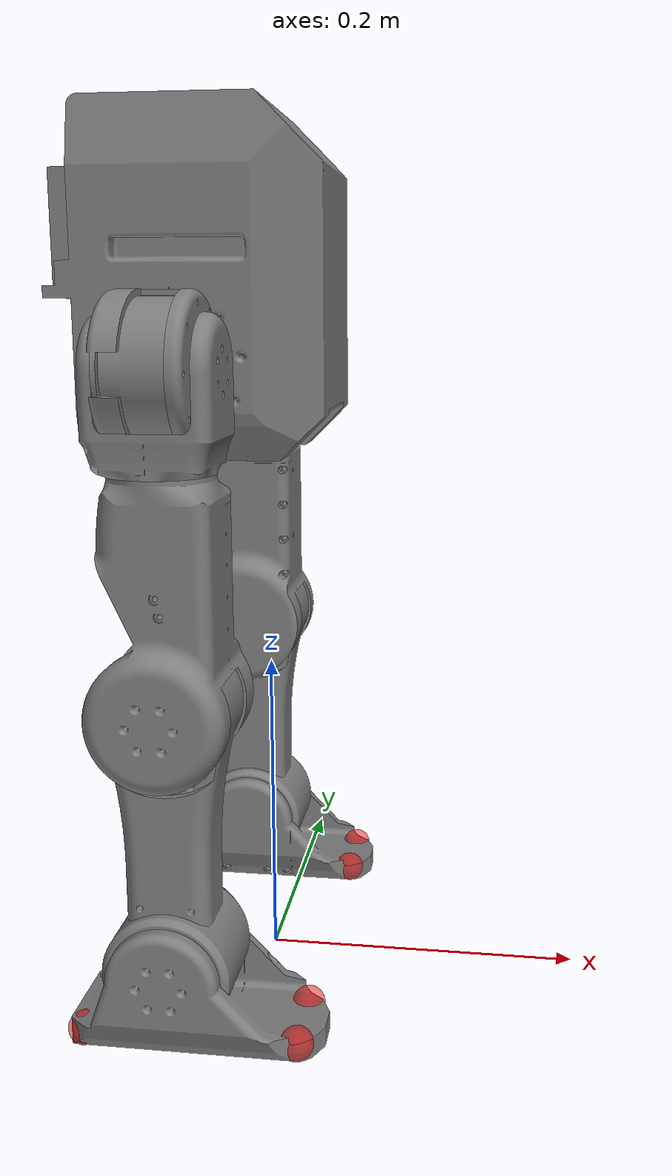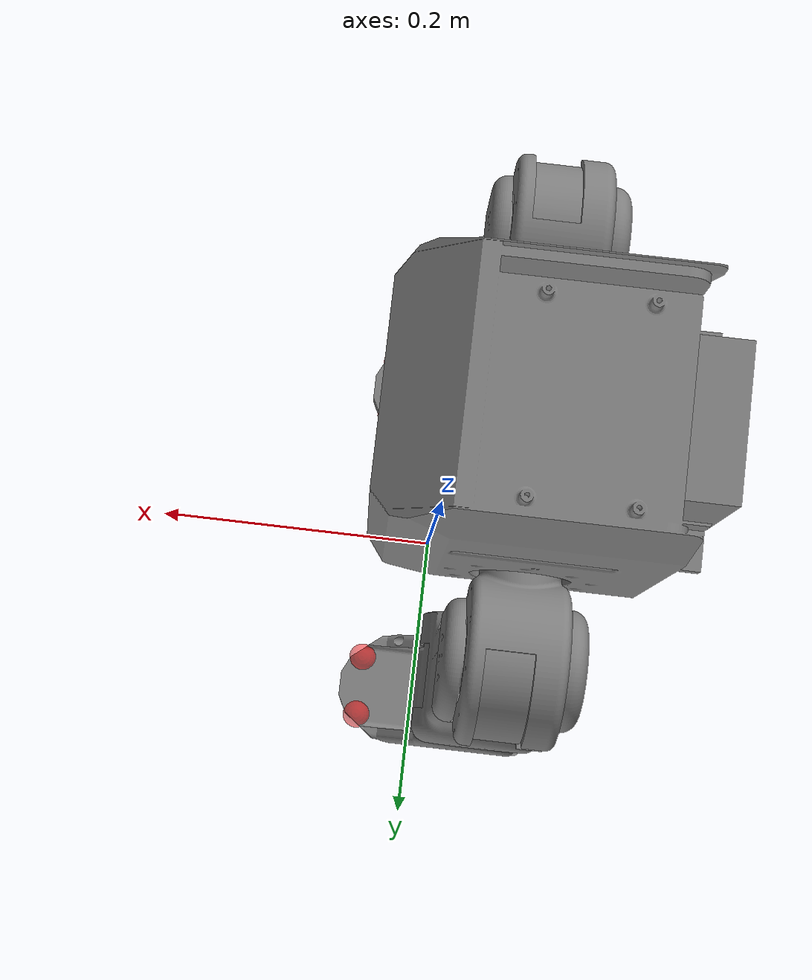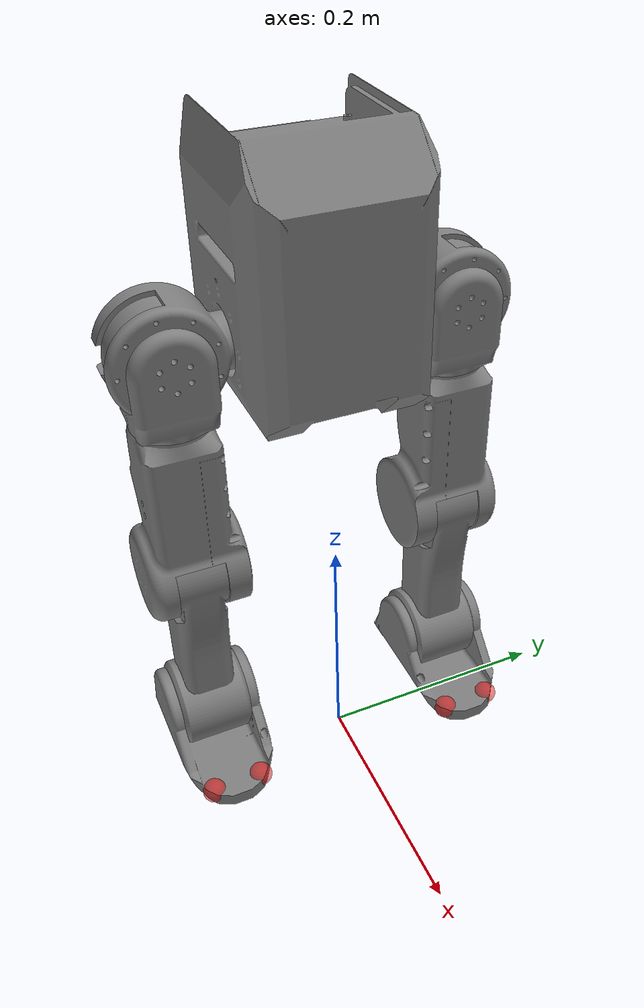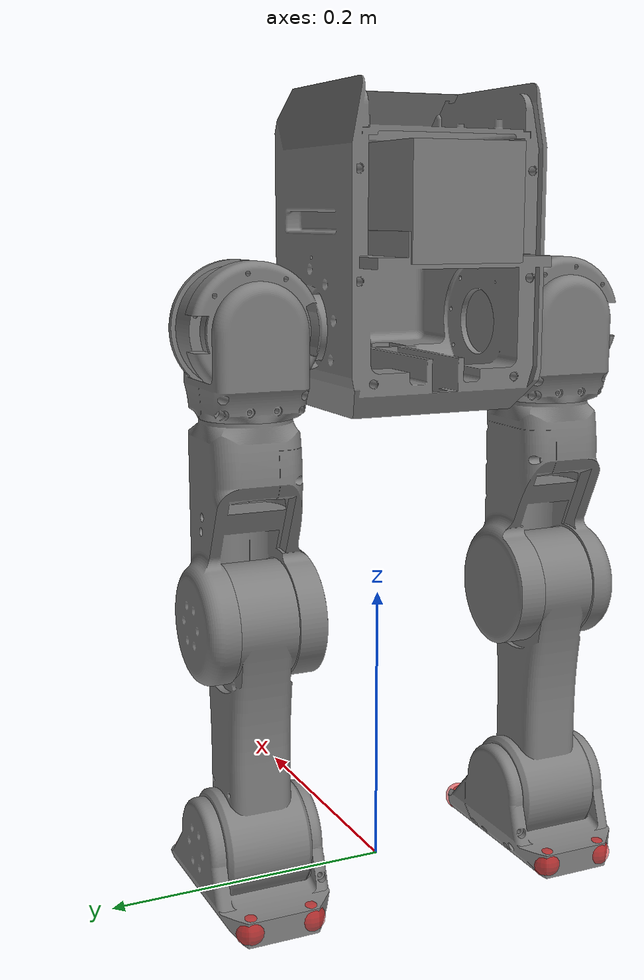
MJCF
<mujoco model="minibot">
  <compiler angle='radian' eulerseq="XYZ" meshdir="../meshes/"
    autolimits="true" />
  <option timestep="0.001"/>
  <visual>
    <global azimuth="150" elevation="-20" />
    <headlight ambient="0.3 0.3 0.3" diffuse="0.6 0.6 0.6" specular="0 0 0" />
    <scale forcewidth="0.03" contactwidth="0.01" contactheight="0.02" com="1" framelength="0.6"
      framewidth="0.05" />
    <rgba haze="0.15 0.25 0.35 1" com="0.502 1 0 0.5" contactpoint="1 1 0.6 0.4"
      contactforce="0.98 0.4 0.4 1" />
  </visual>
  <default>
    <geom contype = "0" conaffinity = "0" solref = "0.005 1" condim = "3" friction = "1 1" />
    <equality solref = "0.005 1" />
    <default class = "zhiyuan">
    </default>
    <default class = "collision">
        <geom contype = "1" group = "3" type = "capsule" />
        <default class = "collision-left">
            <geom contype = "2" conaffinity = "4" />
        </default>
        <default class = "collision-right">
            <geom contype = "4" conaffinity = "2" />
        </default>
    </default>
  </default>
  <asset>
    <mesh name="base_link" content_type="model/stl" file="base_link.stl" scale="0.001 0.001 0.001"/>
    <mesh name="battery_1" content_type="model/stl" file="battery_1.stl" scale="0.001 0.001 0.001"/>
    <mesh name="RS02_3_1" content_type="model/stl" file="RS02_3_1.stl" scale="0.001 0.001 0.001"/>
    <mesh name="RS02_4_1" content_type="model/stl" file="RS02_4_1.stl" scale="0.001 0.001 0.001"/>
    <mesh name="left_hip_pitch_link_1" content_type="model/stl" file="left_hip_pitch_link_1.stl" scale="0.001 0.001 0.001"/>
    <mesh name="right_hip_pitch_link_1" content_type="model/stl" file="right_hip_pitch_link_1.stl" scale="0.001 0.001 0.001"/>
    <mesh name="left_hip_roll_link_1" content_type="model/stl" file="left_hip_roll_link_1.stl" scale="0.001 0.001 0.001"/>
    <mesh name="right_hip_roll_link_1" content_type="model/stl" file="right_hip_roll_link_1.stl" scale="0.001 0.001 0.001"/>
    <mesh name="left_hip_yaw_link_1" content_type="model/stl" file="left_hip_yaw_link_1.stl" scale="0.001 0.001 0.001"/>
    <mesh name="right_hip_yaw_link_1" content_type="model/stl" file="right_hip_yaw_link_1.stl" scale="0.001 0.001 0.001"/>
    <mesh name="left_knee_link_1" content_type="model/stl" file="left_knee_link_1.stl" scale="0.001 0.001 0.001"/>
    <mesh name="right_knee_link_1" content_type="model/stl" file="right_knee_link_1.stl" scale="0.001 0.001 0.001"/>
    <mesh name="left_ankle_pitch_link_1" content_type="model/stl" file="left_ankle_pitch_link_1.stl" scale="0.001 0.001 0.001"/>
    <mesh name="right_ankle_pitch_link_1" content_type="model/stl" file="right_ankle_pitch_link_1.stl" scale="0.001 0.001 0.001"/>
  </asset>

  <worldbody>
    <body name="base_link" pos="0 0 0.37">
      <freejoint name="floating_base"/>
      <inertial pos="-0.0227544 -9.02508e-06 0.0497123" quat="0.999979 0 0.00646884 0" mass="1.28589" diaginertia="0.00753138 0.006963 0.00528962"/>
      <geom type="mesh" contype="0" conaffinity="0" group="1" density="0" mesh="base_link"/>
      <geom type="mesh" mesh="base_link" class="collision"/>
      <body name="imu_link">
        <inertial pos="0 0 0" mass="0.0001" diaginertia="0 0 0"/>
      </body>
      <site name = "imu" size = "0.001" pos = "0 0 0" />
      <body name="battery_1" pos="-0.005466 0 0.06425">
        <inertial pos="-0.0570557 2.04763e-05 0.0368659" quat="0 0.690964 0 0.722889" mass="0.679747" diaginertia="0.00111204 0.001082 0.000601961"/>
        <geom pos="0.005466 0 -0.06425" quat="1 0 0 0" type="mesh" contype="0" conaffinity="0" group="1" density="0" mesh="battery_1"/>
      </body>
      <body name="RS02_1_1" pos="-0.0371 0.0554 0.0225">
        <inertial pos="0.000686404 -0.0190126 -0.00110839" quat="0.707388 -0.0729626 -0.0791499 0.69858" mass="0.383794" diaginertia="0.000355021 0.000265643 0.000251335"/>
      </body>
      <body name="RS02_2_1" pos="-0.0371 -0.0554 0.0225">
        <inertial pos="0.000686404 0.0190126 0.00110839" quat="0.69858 0.0791499 0.0729626 0.707388" mass="0.383794" diaginertia="0.000355021 0.000265643 0.000251335"/>
      </body>
      <body name="left_hip_pitch_link" pos="-0.0371 0.059 0.0225">
        <inertial pos="-0.00417062 0.0422641 -3.15653e-05" quat="0.705568 0.705568 0.0466288 0.0466288" mass="0.0943321" diaginertia="0.000121664 9.8e-05 8.33362e-05"/>
        <joint name="left_hip_pitch_joint" pos="0 0 0" axis="0 -1 0" damping='0.01' armature="0.01" range="-2.61 3.14" actuatorfrcrange="-17 17"/>
        <geom pos="0.0371 -0.059 -0.0225" quat="1 0 0 0" type="mesh" contype="0" conaffinity="0" group="1" density="0" mesh="left_hip_pitch_link_1"/>
        <geom pos="0.0371 -0.059 -0.0225" quat="1 0 0 0" type="mesh" mesh="left_hip_pitch_link_1" rgba="0 0 0 1"/>
        <body name="RS02_4_1" pos="0.02 0.0525 0">
          <inertial pos="-0.0190126 0.000686403 0.00110839" quat="0.994169 -0.10756 0.00437509 0.00622816" mass="0.383794" diaginertia="0.000355021 0.000265643 0.000251335"/>
          <geom pos="0.0171 -0.1115 -0.0225" type="mesh" contype="0" conaffinity="0" group="1" density="0" mesh="RS02_4_1"/>
        </body>
        <body name="left_hip_roll_link" pos="0.025 0.0525 0">
          <inertial pos="-0.0209284 -4.58136e-05 -0.0295141" quat="0.65488 0.266705 0.266705 0.65488" mass="0.214014" diaginertia="0.000269 0.000220506 0.000178494"/>
          <joint name="left_hip_roll_joint" pos="0 0 0" axis="1 0 0" damping='0.01' armature="0.01" range="-0.3 3.1" actuatorfrcrange="-17 17"/>
          <geom pos="0.0121 -0.1115 -0.0225" quat="1 0 0 0" type="mesh" contype="0" conaffinity="0" group="1" density="0" mesh="left_hip_roll_link_1"/>
          <geom pos="0.0121 -0.1115 -0.0225" quat="1 0 0 0" type="mesh" mesh="left_hip_roll_link_1" rgba="0 0 0 1"/>
          <body name="left_hip_yaw_link" pos="-0.02415 0 -0.055">
            <inertial pos="0.00453541 -0.00012515 -0.0827174" quat="0.999918 -0.00395755 0.012187 0.000547296" mass="0.234011" diaginertia="0.000718268 0.000645024 0.000266708"/>
            <joint name="left_hip_yaw_joint" pos="0 0 0" axis="0 0 -1" damping='0.01' armature="0.01" range="-3 3" actuatorfrcrange="-6 6"/>
            <geom pos="0.03625 -0.1115 0.0325" type="mesh" contype="0" conaffinity="0" group="1" density="0" mesh="left_hip_yaw_link_1"/>
            <geom pos="0.03625 -0.1115 0.0325" type="mesh" mesh="left_hip_yaw_link_1"/>
            <body name="RS05_1_1" pos="0 0 -0.015">
              <inertial pos="-0.000131581 4.9559e-05 -0.0188055" mass="0.222271" diaginertia="8.8e-05 8.8e-05 7.5e-05"/>
            </body>
            <body name="left_knee_link" pos="0 0.0267 -0.133">
              <inertial pos="1.57859e-06 -0.0275984 -0.0746707" quat="0.707107 0 0 0.707107" mass="0.248334" diaginertia="0.001112 0.001081 0.000184"/>
              <joint name="left_knee_joint" pos="0 0 0" axis="0 1 0" damping='0.01' armature="0.01" range="-0.25 2.3" actuatorfrcrange="-14 14"/>
              <geom pos="0.03625 -0.1382 0.1655" quat="1 0 0 0" type="mesh" contype="0" conaffinity="0" group="1" density="0" mesh="left_knee_link_1"/>
              <geom pos="0.03625 -0.1382 0.1655" quat="1 0 0 0" type="mesh" mesh="left_knee_link_1" rgba="0 0 0 1"/>
              <body name="RS00_1_1" pos="0 -0.001 0">
                <inertial pos="0.000353564 -0.0222804 -1.31516e-05" quat="0.5 0.5 -0.5 0.5" mass="0.325391" diaginertia="0.000192 0.000189 0.000176"/>
              </body>
              <body name="RS00_2_1" pos="0 -0.001 -0.154">
                <inertial pos="0.000353564 -0.0222804 -1.31516e-05" quat="0.5 0.5 -0.5 0.5" mass="0.325391" diaginertia="0.000192 0.000189 0.000176"/>
              </body>
              <body name="left_ankle_pitch_link" pos="0 0 -0.154">
                <inertial pos="0.00537725 -0.0248724 -0.0258705" quat="-0.0116192 0.738553 -0.0212994 0.673758" mass="0.151095" diaginertia="0.000303287 0.000262924 0.000160789"/>
                <joint name="left_ankle_pitch_joint" pos="0 0 0" axis="0 -1 0" damping='0.01' armature="0.01" range="-1.46 1.6" actuatorfrcrange="-14 14"/>
                <geom pos="0.03625 -0.1382 0.3195" quat="1 0 0 0" type="mesh" contype="0" conaffinity="0" group="1" density="0" mesh="left_ankle_pitch_link_1"/>
                <geom pos="0.03625 -0.1382 0.3195" quat="1 0 0 0" type="mesh" mesh="left_ankle_pitch_link_1" rgba="0 0 0 1"/>
                <geom type = "sphere" size = "0.01" pos = "0.075 -0.005 -0.038" class = "collision"  />
                <geom type = "sphere" size = "0.01" pos = "0.075 -0.047 -0.038" class = "collision"  />
                <geom type = "sphere" size = "0.01" pos = "-0.051 -0.005 -0.038" class = "collision"  />
                <geom type = "sphere" size = "0.01" pos = "-0.051 -0.047 -0.038" class = "collision"  />
                <geom type = "sphere" size = "0.01" pos = "0.075 -0.005 -0.038" rgba = "255 0 0 0.5"  />
                <geom type = "sphere" size = "0.01" pos = "0.075 -0.047 -0.038" rgba = "255 0 0 0.5"  />
                <geom type = "sphere" size = "0.01" pos = "-0.051 -0.005 -0.038" rgba = "255 0 0 0.5"  />
                <geom type = "sphere" size = "0.01" pos = "-0.051 -0.047 -0.038" rgba = "255 0 0 0.5"  />
              </body>
            </body>
          </body>
        </body>
      </body>
      <body name="right_hip_pitch_link" pos="-0.0371 -0.059 0.0225">
        <inertial pos="-0.00417062 -0.0422641 3.15673e-05" quat="0.705568 0.705568 -0.0466288 -0.0466288" mass="0.0943321" diaginertia="0.000121664 9.8e-05 8.33362e-05"/>
        <joint name="right_hip_pitch_joint" pos="0 0 0" axis="0 1 0" damping='0.01' armature="0.01" range="-3.14 2.61" actuatorfrcrange="-17 17"/>
        <geom pos="0.0371 0.059 -0.0225" quat="1 0 0 0" type="mesh" contype="0" conaffinity="0" group="1" density="0" mesh="right_hip_pitch_link_1"/>
        <geom pos="0.0371 0.059 -0.0225" quat="1 0 0 0" type="mesh" mesh="right_hip_pitch_link_1" rgba="0 0 0 1"/>
        <body name="RS02_3_1" pos="0.02 -0.0525 0">
          <inertial pos="-0.0190126 0.000686407 0.00110839" quat="0.994169 -0.10756 0.00437509 0.00622816" mass="0.383794" diaginertia="0.000355021 0.000265643 0.000251335"/>
          <geom pos="0.0171 0.1115 -0.0225" type="mesh" contype="0" conaffinity="0" group="1" density="0" mesh="RS02_3_1"/>
        </body>
        <body name="right_hip_roll_link" pos="0.025 -0.0525 0">
          <inertial pos="-0.0209284 -4.58099e-05 -0.0295141" quat="0.65488 0.266705 0.266705 0.65488" mass="0.214014" diaginertia="0.000269 0.000220506 0.000178494"/>
          <joint name="right_hip_roll_joint" pos="0 0 0" axis="1 0 0" damping='0.01' armature="0.01" range="-3.1 0.3" actuatorfrcrange="-17 17"/>
          <geom pos="0.0121 0.1115 -0.0225" quat="1 0 0 0" type="mesh" contype="0" conaffinity="0" group="1" density="0" mesh="right_hip_roll_link_1"/>
          <geom pos="0.0121 0.1115 -0.0225" quat="1 0 0 0" type="mesh" mesh="right_hip_roll_link_1" rgba="0 0 0 1"/>
          <body name="right_hip_yaw_link" pos="-0.02415 0 -0.055">
            <inertial pos="0.00453591 0.000125209 -0.0827174" quat="0.999918 0.00395755 0.012187 -0.000547296" mass="0.234013" diaginertia="0.000718268 0.000645024 0.000266708"/>
            <joint name="right_hip_yaw_joint" pos="0 0 0" axis="0 0 -1" damping='0.01' armature="0.01" range="-3 3" actuatorfrcrange="-6 6"/>
            <geom pos="0.03625 0.1115 0.0325" quat="1 0 0 0" type="mesh" contype="0" conaffinity="0" group="1" density="0" mesh="right_hip_yaw_link_1"/>
            <geom pos="0.03625 0.1115 0.0325" quat="1 0 0 0" type="mesh" mesh="right_hip_yaw_link_1"/>
            <body name="RS05_2_1" pos="0 0 -0.015">
              <inertial pos="-0.000131581 4.95628e-05 -0.0188055" mass="0.222271" diaginertia="8.8e-05 8.8e-05 7.5e-05"/>
            </body>
            <body name="right_knee_link" pos="0 -0.0267 -0.133">
              <inertial pos="-1.57825e-06 0.0275984 -0.0746707" quat="0.707107 0 0 0.707107" mass="0.248334" diaginertia="0.001112 0.001081 0.000184"/>
              <joint name="right_knee_joint" pos="0 0 0" axis="0 -1 0" damping='0.01' armature="0.01" range="-2.3 0.25" actuatorfrcrange="-14 14"/>
              <geom pos="0.03625 0.1382 0.1655" quat="1 0 0 0" type="mesh" contype="0" conaffinity="0" group="1" density="0" mesh="right_knee_link_1"/>
              <geom pos="0.03625 0.1382 0.1655" quat="1 0 0 0" type="mesh" mesh="right_knee_link_1" rgba="0 0 0 1"/>
              <body name="RS00_3_1" pos="0 0.001 0">
                <inertial pos="-0.000353564 0.0222805 -1.3151e-05" quat="0.5 0.5 -0.5 0.5" mass="0.325391" diaginertia="0.000192 0.000189 0.000176"/>
              </body>
              <body name="RS00_4_1" pos="0 0.001 -0.154">
                <inertial pos="-0.000353564 0.0222805 -1.3151e-05" quat="0.5 0.5 -0.5 0.5" mass="0.325391" diaginertia="0.000192 0.000189 0.000176"/>
              </body>
              <body name="right_ankle_pitch_link" pos="0 0 -0.154">
                <inertial pos="0.00537756 0.0248694 -0.0258709" quat="0.0120009 0.738759 0.0217376 0.673513" mass="0.151085" diaginertia="0.000302297 0.000262922 0.000160781"/>
                <joint name="right_ankle_pitch_joint" pos="0 0 0" axis="0 1 0" damping='0.01' armature="0.01" range="-1.6 1.46" actuatorfrcrange="-14 14"/>
                <geom pos="0.03625 0.1382 0.3195" quat="1 0 0 0" type="mesh" contype="0" conaffinity="0" group="1" density="0" mesh="right_ankle_pitch_link_1"/>
                <geom pos="0.03625 0.1382 0.3195" quat="1 0 0 0" type="mesh" mesh="right_ankle_pitch_link_1" rgba="0 0 0 1"/>
                <geom type = "sphere" size = "0.01" pos = "0.075 0.047 -0.038" class = "collision"  />
                <geom type = "sphere" size = "0.01" pos = "0.075 0.005 -0.038" class = "collision"  />
                <geom type = "sphere" size = "0.01" pos = "-0.051 0.047 -0.038" class = "collision"  />
                <geom type = "sphere" size = "0.01" pos = "-0.051 0.005 -0.038" class = "collision"  />
                <geom type = "sphere" size = "0.01" pos = "0.075 0.047 -0.038" rgba = "255 0 0 0.5"  />
                <geom type = "sphere" size = "0.01" pos = "0.075 0.005 -0.038" rgba = "255 0 0 0.5"  />
                <geom type = "sphere" size = "0.01" pos = "-0.051 0.047 -0.038" rgba = "255 0 0 0.5"  />
                <geom type = "sphere" size = "0.01" pos = "-0.051 0.005 -0.038" rgba = "255 0 0 0.5"  />
              </body>
            </body>
          </body>
        </body>
      </body>
    </body>
  </worldbody>
  <actuator>
    <motor name='left_hip_pitch_joint'  joint='left_hip_pitch_joint'  gear="1" ctrlrange='-100 100'/>
    <motor name='left_hip_roll_joint'   joint='left_hip_roll_joint'   gear="1" ctrlrange='-100 100'/>
    <motor name='left_hip_yaw_joint'    joint='left_hip_yaw_joint'    gear="1" ctrlrange='-100 100'/>
    <motor name='left_knee_joint'       joint='left_knee_joint'       gear="1" ctrlrange='-100 100'/>
    <motor name='left_ankle_pitch_joint'      joint='left_ankle_pitch_joint'      gear="1" ctrlrange='-100 100'/>
    <motor name='right_hip_pitch_joint' joint='right_hip_pitch_joint' gear="1" ctrlrange='-100 100'/>
    <motor name='right_hip_roll_joint'  joint='right_hip_roll_joint'  gear="1" ctrlrange='-100 100'/>
    <motor name='right_hip_yaw_joint'   joint='right_hip_yaw_joint'   gear="1" ctrlrange='-100 100'/>
    <motor name='right_knee_joint'      joint='right_knee_joint'      gear="1" ctrlrange='-100 100'/>
    <motor name='right_ankle_pitch_joint'     joint='right_ankle_pitch_joint'     gear="1" ctrlrange='-100 100'/>
  </actuator>
  <sensor>
    <!-- imu sensor -->
    <framequat name="body-orientation" objtype="site" objname="imu" noise="0"/>
    <gyro name="body-angular-velocity" site="imu" noise="0.001"/>
    <framepos name="body-linear-pos" objtype="site" objname="imu"/>
    <velocimeter name="body-linear-vel" site="imu"/>
    <accelerometer name="body-linear-acceleration" site="imu" noise="0.001"/>

    <jointpos name = 'jointpos_left_hip_pitch_joint' joint = 'left_hip_pitch_joint' noise = "0" />
    <jointpos name = 'jointpos_left_hip_roll_joint' joint = 'left_hip_roll_joint' noise = "0" />
    <jointpos name = 'jointpos_left_hip_yaw_joint' joint = 'left_hip_yaw_joint' noise = "0" />
    <jointpos name = 'jointpos_left_knee_joint' joint = 'left_knee_joint' noise = "0" />
    <jointpos name = 'jointpos_left_ankle_pitch_joint' joint = 'left_ankle_pitch_joint' noise = "0" />

    <jointpos name = 'jointpos_right_hip_pitch_joint' joint = 'right_hip_pitch_joint' noise = "0" />
    <jointpos name = 'jointpos_right_hip_roll_joint' joint = 'right_hip_roll_joint' noise = "0" />
    <jointpos name = 'jointpos_right_hip_yaw_joint' joint = 'right_hip_yaw_joint' noise = "0" />
    <jointpos name = 'jointpos_right_knee_joint' joint = 'right_knee_joint' noise = "0" />
    <jointpos name = 'jointpos_right_ankle_pitch_joint' joint = 'right_ankle_pitch_joint' noise = "0" />

    <jointvel name = 'jointvel_left_hip_pitch_joint' joint = 'left_hip_pitch_joint' noise = "0" />
    <jointvel name = 'jointvel_left_hip_roll_joint' joint = 'left_hip_roll_joint' noise = "0" />
    <jointvel name = 'jointvel_left_hip_yaw_joint' joint = 'left_hip_yaw_joint' noise = "0" />
    <jointvel name = 'jointvel_left_knee_joint' joint = 'left_knee_joint' noise = "0" />
    <jointvel name = 'jointvel_left_ankle_pitch_joint' joint = 'left_ankle_pitch_joint' noise = "0" />

    <jointvel name = 'jointvel_right_hip_pitch_joint' joint = 'right_hip_pitch_joint' noise = "0" />
    <jointvel name = 'jointvel_right_hip_roll_joint' joint = 'right_hip_roll_joint' noise = "0" />
    <jointvel name = 'jointvel_right_hip_yaw_joint' joint = 'right_hip_yaw_joint' noise = "0" />
    <jointvel name = 'jointvel_right_knee_joint' joint = 'right_knee_joint' noise = "0" />
    <jointvel name = 'jointvel_right_ankle_pitch_joint' joint = 'right_ankle_pitch_joint' noise = "0" />
  </sensor>
</mujoco>
